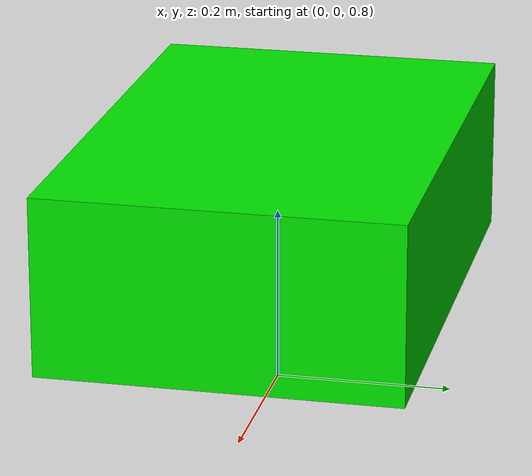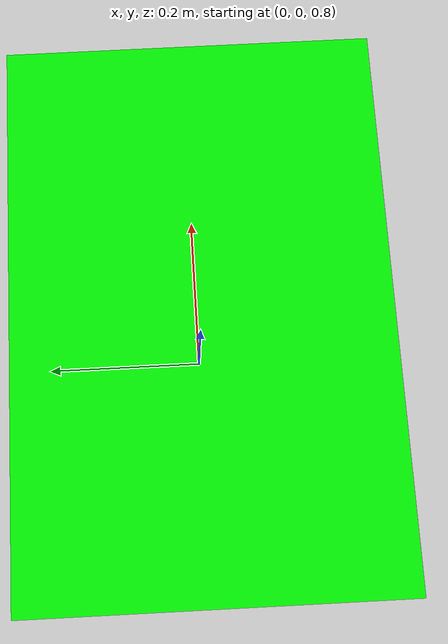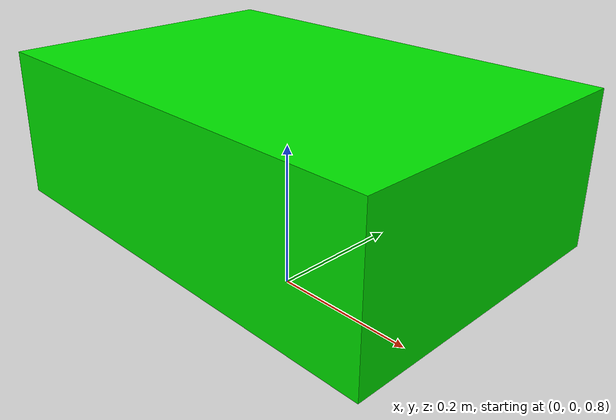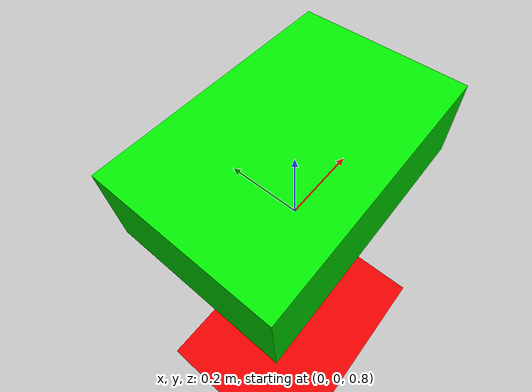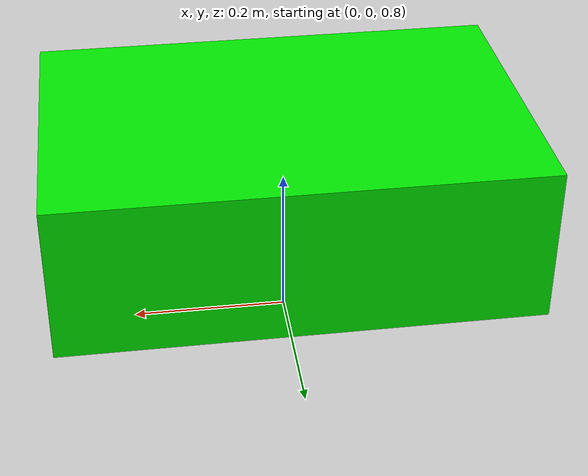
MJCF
<mujoco>
    <visual>
        <global offheight="1024" offwidth="1024"/>
    </visual>
	<worldbody>
        <light diffuse=".5 .5 .5" pos="0 0 3" dir="0 0 -1"/>
		<geom type="plane" size="1 1 0.1" rgba=".9 0 0 1"/>
		<body pos="0 0 1" euler="0 -90 0">
			<joint type="free"/>
			<geom type="box" size=".1 .2 .3" rgba="0 .9 0 1"/>
		</body>
	</worldbody>
</mujoco>
